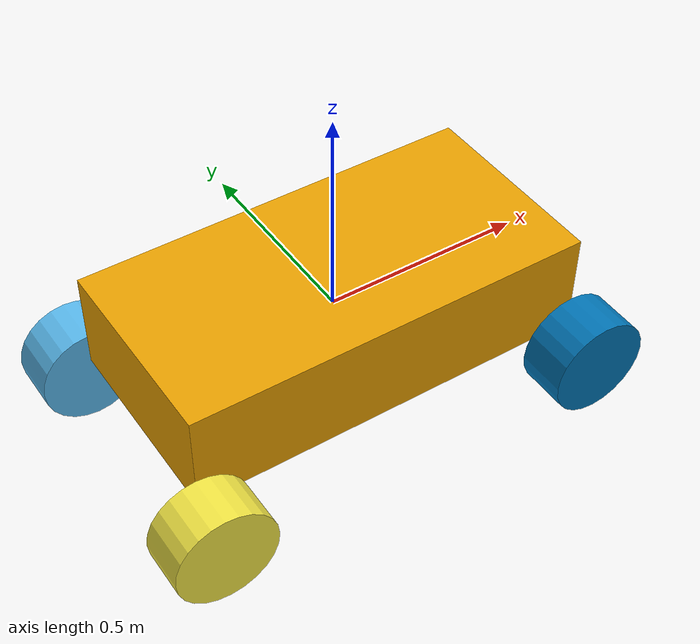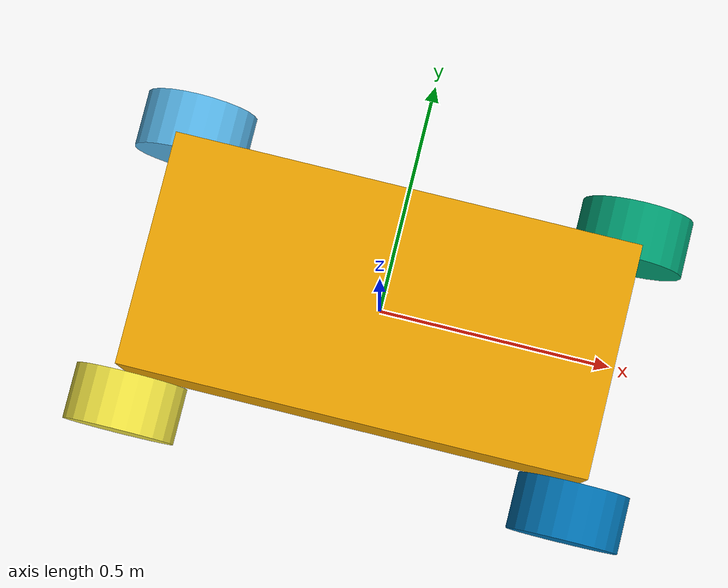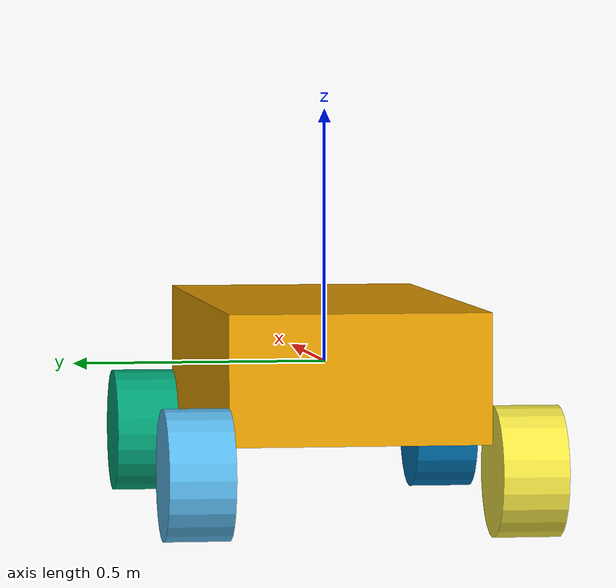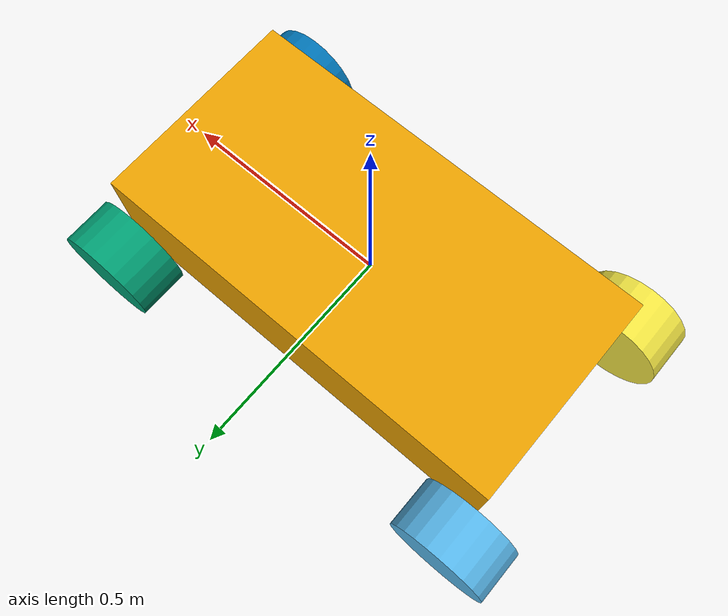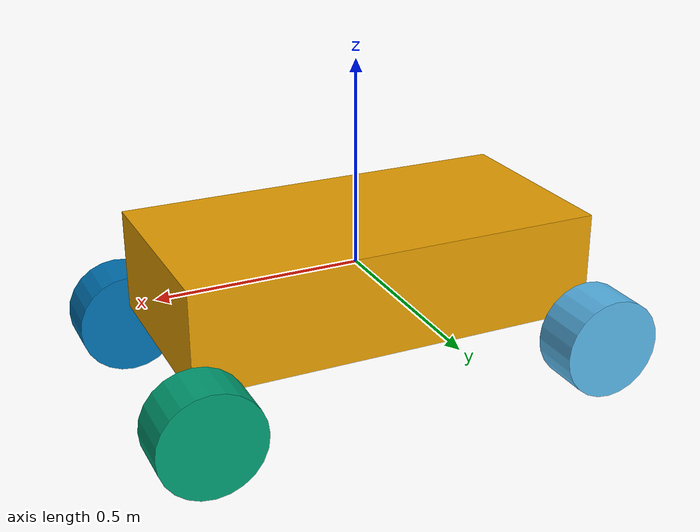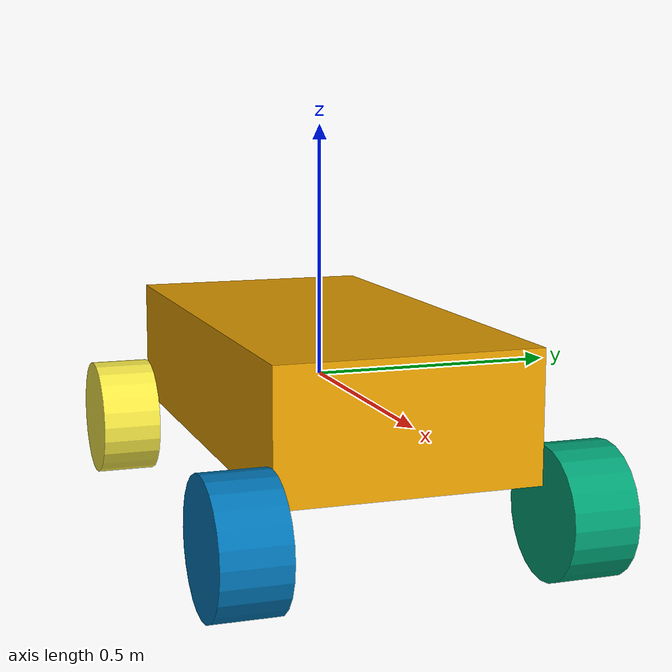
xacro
<?xml version="1.0"?>
<robot name="block" xmlns:xacro="http://ros.org/wiki/xacro">

  <xacro:property name="width" value=".5" />
  <xacro:property name="length" value="1" />
  <xacro:property name="height" value=".25" />
  <xacro:property name="pi" value="3.1415" />
  <xacro:property name="wheel_radius" value=".125" />
  <xacro:property name="wheel_width" value=".125" />

  <xacro:macro name="default_inertial" params="mass">
    <inertial>
      <mass value="${mass}" />
      <inertia ixx="1.0" ixy="0.0" ixz="0.0" iyy="1.0" iyz="0.0" izz="1.0" />
    </inertial>
  </xacro:macro>

  <link name="base_link">
    <visual>
      <geometry>
        <box size="${length} ${width} ${height}"/>
      </geometry>
    </visual>
    <collision>
      <geometry>
        <box size="${length} ${width} ${height}"/>
      </geometry>
    </collision>
    <xacro:default_inertial mass="5"/>
  </link>

  <xacro:macro name="wheel" params="prefix suffix reflect side">
    <link name="${prefix}_${suffix}_wheel">
      <visual>
        <origin xyz="0 0 0" rpy="${pi/2} 0 0" />
        <geometry>
          <cylinder radius="${wheel_radius}" length="${wheel_width}"/>
        </geometry>
      </visual>
      <collision>
        <origin xyz="0 0 0" rpy="${pi/2} 0 0" />
        <geometry>
          <cylinder radius="${wheel_radius}" length="${wheel_width}"/>
        </geometry>
      </collision>
      <xacro:default_inertial mass="1"/>
    </link>

    <joint name="${prefix}_${suffix}_wheel_joint" type="continuous">
      <axis xyz="0 1 0" rpy="0 0 0" />
      <parent link="base_link"/>
      <child link="${prefix}_${suffix}_wheel"/>
      <origin xyz="${.5*length*reflect} ${(.5*width+wheel_width/2)*side} -${wheel_radius+.05}" rpy="0 0 0"/>
      <limit effort="150" velocity="5"/>
    </joint>

      <transmission name="${prefix}_${suffix}_wheel_trans">
        <type>transmission_interface/SimpleTransmission</type>
        <actuator name="${prefix}_${suffix}_motor">
          <mechanicalReduction>1</mechanicalReduction>
        </actuator>
        <joint name="${prefix}_${suffix}_wheel_joint">
          <hardwareInterface>hardware_interface/VelocityJointInterface</hardwareInterface>
        </joint>
  </transmission>

  </xacro:macro>

  <xacro:wheel prefix="right" suffix="front" reflect="-1" side="1"/>
  <xacro:wheel prefix="right" suffix="back" reflect="1" side="1"/>
  <xacro:wheel prefix="left" suffix="front" reflect="-1" side="-1"/>
  <xacro:wheel prefix="left" suffix="back" reflect="1" side="-1"/>

  <gazebo>
    <plugin name="gazebo_ros_control" filename="libgazebo_ros_control.so">
      <robotNamespace>/mobile_block</robotNamespace>
    </plugin>
  </gazebo>

</robot>
